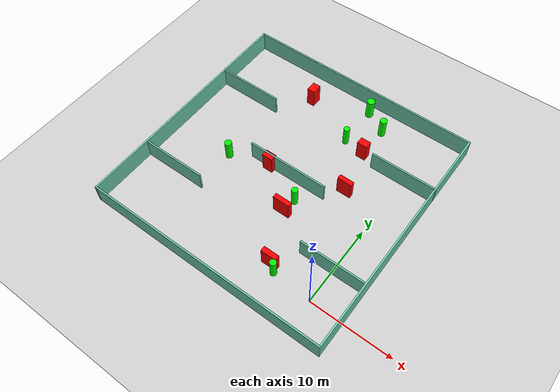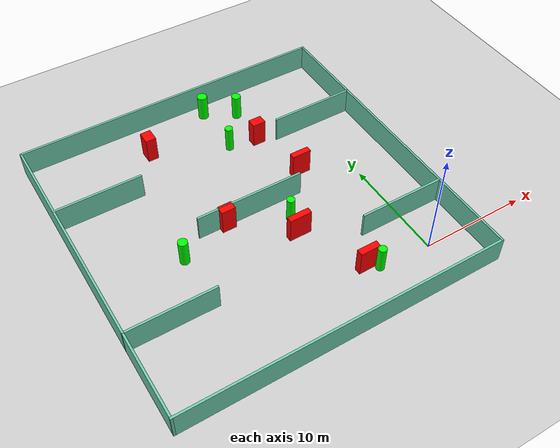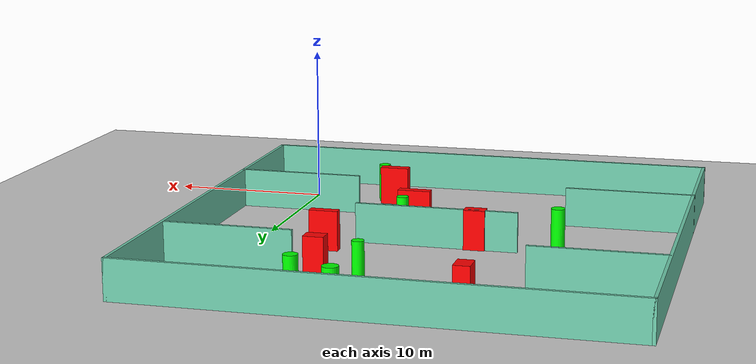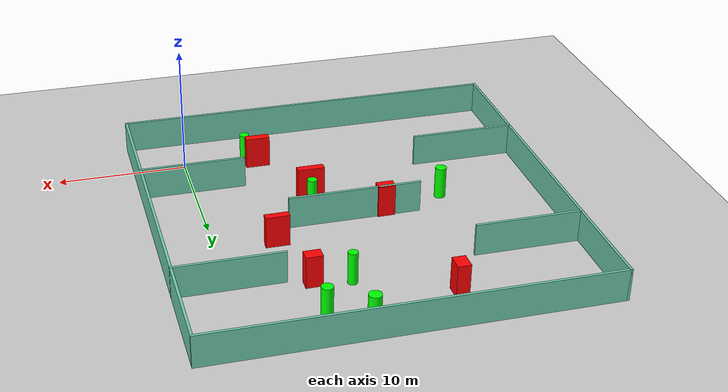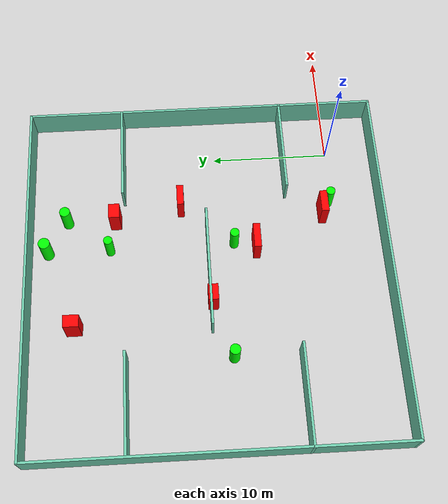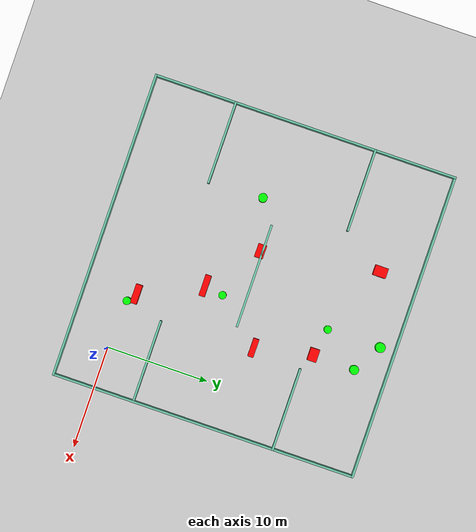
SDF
<sdf version="1.7">
 <world name="default">
  <light name="sun" type="directional">
   <pose>0 0 10 0 -0 0</pose>
   <diffuse>0.8 0.8 0.8 1</diffuse>
   <specular>0.2 0.2 0.2 1</specular>
   <attenuation>
    <range>1000</range>
    <constant>0.9</constant>
    <linear>0.01</linear>
    <quadratic>0.001</quadratic>
   </attenuation>
   <direction>-0.5 0.1 -0.9</direction>
   <spot><inner_angle>0</inner_angle><outer_angle>0</outer_angle><falloff>0</falloff></spot>
  </light>
  <model name="ground_plane">
   <static>1</static>
   <link name="link">
    <collision name="collision">
     <geometry><plane><normal>0 0 1</normal><size>100 100</size></plane></geometry>
     <surface>
      <contact><collide_bitmask>65535</collide_bitmask></contact>
      <friction><ode><mu>100</mu><mu2>50</mu2></ode></friction>
     </surface>
    </collision>
    <visual name="visual">
     <cast_shadows>0</cast_shadows>
     <geometry><plane><normal>0 0 1</normal><size>100 100</size></plane></geometry>
     <material>
      <script><uri>file://media/materials/scripts/gazebo.material</uri><name>Gazebo/Grey</name></script>
     </material>
    </visual>
   </link>
  </model>
  <gravity>0 0 -9.8</gravity>
  <magnetic_field>6e-06 2.3e-05 -4.2e-05</magnetic_field>
  <atmosphere type="adiabatic"/>
  <physics type="ode">
   <max_step_size>0.001</max_step_size>
   <real_time_factor>1</real_time_factor>
   <real_time_update_rate>1000</real_time_update_rate>
  </physics>
  <scene><ambient>0.4 0.4 0.4 1</ambient><background>0.7 0.7 0.7 1</background><shadows>1</shadows></scene>
  <spherical_coordinates>
   <surface_model>EARTH_WGS84</surface_model>
   <latitude_deg>0</latitude_deg>
   <longitude_deg>0</longitude_deg>
   <elevation>0</elevation>
   <heading_deg>0</heading_deg>
  </spherical_coordinates>
  <model name="my_base_walls">
   <link name="Wall_10">
    <collision name="Wall_10_Collision">
     <geometry><box><size>8.2 0.2 2.5</size></box></geometry>
     <pose>0 0 1.25 0 -0 0</pose>
    </collision>
    <visual name="Wall_10_Visual">
     <pose>0 0 1.25 0 -0 0</pose>
     <geometry><box><size>8.2 0.2 2.5</size></box></geometry>
     <material>
      <script><uri>file://media/materials/scripts/gazebo.material</uri><name>Gazebo/Grey</name></script>
      <ambient>0.435294 0.796078 0.67451 1</ambient>
     </material>
     <meta><layer>0</layer></meta>
    </visual>
    <pose>-11 -7 0 0 -0 0</pose>
   </link>
   <link name="Wall_12">
    <collision name="Wall_12_Collision">
     <geometry><box><size>8.2 0.2 2.5</size></box></geometry>
     <pose>0 0 1.25 0 -0 0</pose>
    </collision>
    <visual name="Wall_12_Visual">
     <pose>0 0 1.25 0 -0 0</pose>
     <geometry><box><size>8.2 0.2 2.5</size></box></geometry>
     <material>
      <script><uri>file://media/materials/scripts/gazebo.material</uri><name>Gazebo/Grey</name></script>
      <ambient>0.435294 0.796078 0.67451 1</ambient>
     </material>
     <meta><layer>0</layer></meta>
    </visual>
    <pose>-11 7 0 0 -0 0</pose>
   </link>
   <link name="Wall_14">
    <collision name="Wall_14_Collision">
     <geometry><box><size>8.2 0.2 2.5</size></box></geometry>
     <pose>0 0 1.25 0 -0 0</pose>
    </collision>
    <visual name="Wall_14_Visual">
     <pose>0 0 1.25 0 -0 0</pose>
     <geometry><box><size>8.2 0.2 2.5</size></box></geometry>
     <material>
      <script><uri>file://media/materials/scripts/gazebo.material</uri><name>Gazebo/Grey</name></script>
      <ambient>0.435294 0.796078 0.67451 1</ambient>
     </material>
     <meta><layer>0</layer></meta>
    </visual>
    <pose>11 7 0 0 -0 3.14159</pose>
   </link>
   <link name="Wall_16">
    <collision name="Wall_16_Collision">
     <geometry><box><size>10.2 0.2 2.5</size></box></geometry>
     <pose>0 0 1.25 0 -0 0</pose>
    </collision>
    <visual name="Wall_16_Visual">
     <pose>0 0 1.25 0 -0 0</pose>
     <geometry><box><size>10.2 0.2 2.5</size></box></geometry>
     <material>
      <script><uri>file://media/materials/scripts/gazebo.material</uri><name>Gazebo/Grey</name></script>
      <ambient>0.435294 0.796078 0.67451 1</ambient>
     </material>
     <meta><layer>0</layer></meta>
    </visual>
    <pose>0 0 0 0 -0 3.14159</pose>
   </link>
   <link name="Wall_2">
    <collision name="Wall_2_Collision">
     <geometry><box><size>30.2 0.2 2.5</size></box></geometry>
     <pose>0 0 1.25 0 -0 0</pose>
    </collision>
    <visual name="Wall_2_Visual">
     <pose>0 0 1.25 0 -0 0</pose>
     <geometry><box><size>30.2 0.2 2.5</size></box></geometry>
     <material>
      <script><uri>file://media/materials/scripts/gazebo.material</uri><name>Gazebo/Grey</name></script>
      <ambient>0.435294 0.796078 0.67451 1</ambient>
     </material>
     <meta><layer>0</layer></meta>
    </visual>
    <pose>0 -15 0 0 -0 3.14159</pose>
   </link>
   <link name="Wall_3">
    <collision name="Wall_3_Collision">
     <geometry><box><size>30.2 0.2 2.5</size></box></geometry>
     <pose>0 0 1.25 0 -0 0</pose>
    </collision>
    <visual name="Wall_3_Visual">
     <pose>0 0 1.25 0 -0 0</pose>
     <geometry><box><size>30.2 0.2 2.5</size></box></geometry>
     <material>
      <script><uri>file://media/materials/scripts/gazebo.material</uri><name>Gazebo/Grey</name></script>
      <ambient>0.435294 0.796078 0.67451 1</ambient>
     </material>
     <meta><layer>0</layer></meta>
    </visual>
    <pose>-15 0 0 0 -0 1.5708</pose>
   </link>
   <link name="Wall_4">
    <collision name="Wall_4_Collision">
     <geometry><box><size>30.2 0.2 2.5</size></box></geometry>
     <pose>0 0 1.25 0 -0 0</pose>
    </collision>
    <visual name="Wall_4_Visual">
     <pose>0 0 1.25 0 -0 0</pose>
     <geometry><box><size>30.2 0.2 2.5</size></box></geometry>
     <material>
      <script><uri>file://media/materials/scripts/gazebo.material</uri><name>Gazebo/Grey</name></script>
      <ambient>0.435294 0.796078 0.67451 1</ambient>
     </material>
     <meta><layer>0</layer></meta>
    </visual>
    <pose>0 15 0 0 -0 0</pose>
   </link>
   <link name="Wall_6">
    <collision name="Wall_6_Collision">
     <geometry><box><size>30.2 0.2 2.5</size></box></geometry>
     <pose>0 0 1.25 0 -0 0</pose>
    </collision>
    <visual name="Wall_6_Visual">
     <pose>0 0 1.25 0 -0 0</pose>
     <geometry><box><size>30.2 0.2 2.5</size></box></geometry>
     <material>
      <script><uri>file://media/materials/scripts/gazebo.material</uri><name>Gazebo/Grey</name></script>
      <ambient>0.435294 0.796078 0.67451 1</ambient>
     </material>
     <meta><layer>0</layer></meta>
    </visual>
    <pose>15 0 0 0 -0 1.5708</pose>
   </link>
   <link name="Wall_8">
    <collision name="Wall_8_Collision">
     <geometry><box><size>8.2 0.2 2.5</size></box></geometry>
     <pose>0 0 1.25 0 -0 0</pose>
    </collision>
    <visual name="Wall_8_Visual">
     <pose>0 0 1.25 0 -0 0</pose>
     <geometry><box><size>8.2 0.2 2.5</size></box></geometry>
     <material>
      <script><uri>file://media/materials/scripts/gazebo.material</uri><name>Gazebo/Grey</name></script>
      <ambient>0.435294 0.796078 0.67451 1</ambient>
     </material>
     <meta><layer>0</layer></meta>
    </visual>
    <pose>11 -7 0 0 -0 3.14159</pose>
   </link>
   <static>1</static>
   <pose>-11 11 0 0 -0 0</pose>
  </model>
  <model name="cylinder1">
   <static>1</static>
   <link name="link">
    <inertial>
     <mass>1</mass>
     <inertia><ixx>0.5</ixx><ixy>0</ixy><ixz>0</ixz><iyy>0.5</iyy><iyz>0</iyz><izz>1</izz></inertia>
    </inertial>
    <collision name="collision">
     <geometry><cylinder><radius>0.3737583666034918</radius><length>2.5</length></cylinder></geometry>
    </collision>
    <visual name="visual">
     <geometry><cylinder><radius>0.3737583666034918</radius><length>2.5</length></cylinder></geometry>
     <material>
      <ambient>0 1 0 1</ambient>
      <diffuse>0 1 0 1</diffuse>
      <specular>0.1 0.1 0.1 1</specular>
      <emissive>0 0 0 0</emissive>
     </material>
    </visual>
   </link>
   <pose>-8.295334848968672 8.736734358243865 1.25 0 0 0</pose>
  </model>
  <model name="cylinder2">
   <static>1</static>
   <link name="link">
    <inertial>
     <mass>1</mass>
     <inertia><ixx>0.5</ixx><ixy>0</ixy><ixz>0</ixz><iyy>0.5</iyy><iyz>0</iyz><izz>1</izz></inertia>
    </inertial>
    <collision name="collision">
     <geometry><cylinder><radius>0.36694245312969953</radius><length>2.5</length></cylinder></geometry>
    </collision>
    <visual name="visual">
     <geometry><cylinder><radius>0.36694245312969953</radius><length>2.5</length></cylinder></geometry>
     <material>
      <ambient>0 1 0 1</ambient>
      <diffuse>0 1 0 1</diffuse>
      <specular>0.1 0.1 0.1 1</specular>
      <emissive>0 0 0 0</emissive>
     </material>
    </visual>
   </link>
   <pose>-8.457132224898935 19.256485717257586 1.25 0 0 0</pose>
  </model>
  <model name="cylinder3">
   <static>1</static>
   <link name="link">
    <inertial>
     <mass>1</mass>
     <inertia><ixx>0.5</ixx><ixy>0</ixy><ixz>0</ixz><iyy>0.5</iyy><iyz>0</iyz><izz>1</izz></inertia>
    </inertial>
    <collision name="collision">
     <geometry><cylinder><radius>0.47846008561697473</radius><length>2.5</length></cylinder></geometry>
    </collision>
    <visual name="visual">
     <geometry><cylinder><radius>0.47846008561697473</radius><length>2.5</length></cylinder></geometry>
     <material>
      <ambient>0 1 0 1</ambient>
      <diffuse>0 1 0 1</diffuse>
      <specular>0.1 0.1 0.1 1</specular>
      <emissive>0 0 0 0</emissive>
     </material>
    </visual>
   </link>
   <pose>-8.451727030190035 24.527188340486553 1.25 0 0 0</pose>
  </model>
  <model name="cylinder4">
   <static>1</static>
   <link name="link">
    <inertial>
     <mass>1</mass>
     <inertia><ixx>0.5</ixx><ixy>0</ixy><ixz>0</ixz><iyy>0.5</iyy><iyz>0</iyz><izz>1</izz></inertia>
    </inertial>
    <collision name="collision">
     <geometry><cylinder><radius>0.37633921201885423</radius><length>2.5</length></cylinder></geometry>
    </collision>
    <visual name="visual">
     <geometry><cylinder><radius>0.37633921201885423</radius><length>2.5</length></cylinder></geometry>
     <material>
      <ambient>0 1 0 1</ambient>
      <diffuse>0 1 0 1</diffuse>
      <specular>0.1 0.1 0.1 1</specular>
      <emissive>0 0 0 0</emissive>
     </material>
    </visual>
   </link>
   <pose>-4.849371905049807 0.3279086571770673 1.25 0 0 0</pose>
  </model>
  <model name="cylinder5">
   <static>1</static>
   <link name="link">
    <inertial>
     <mass>1</mass>
     <inertia><ixx>0.5</ixx><ixy>0</ixy><ixz>0</ixz><iyy>0.5</iyy><iyz>0</iyz><izz>1</izz></inertia>
    </inertial>
    <collision name="collision">
     <geometry><cylinder><radius>0.4322325640474097</radius><length>2.5</length></cylinder></geometry>
    </collision>
    <visual name="visual">
     <geometry><cylinder><radius>0.4322325640474097</radius><length>2.5</length></cylinder></geometry>
     <material>
      <ambient>0 1 0 1</ambient>
      <diffuse>0 1 0 1</diffuse>
      <specular>0.1 0.1 0.1 1</specular>
      <emissive>0 0 0 0</emissive>
     </material>
    </visual>
   </link>
   <pose>-18.29075540296794 9.366977200609904 1.25 0 0 0</pose>
  </model>
  <model name="cylinder6">
   <static>1</static>
   <link name="link">
    <inertial>
     <mass>1</mass>
     <inertia><ixx>0.5</ixx><ixy>0</ixy><ixz>0</ixz><iyy>0.5</iyy><iyz>0</iyz><izz>1</izz></inertia>
    </inertial>
    <collision name="collision">
     <geometry><cylinder><radius>0.4360136988487106</radius><length>2.5</length></cylinder></geometry>
    </collision>
    <visual name="visual">
     <geometry><cylinder><radius>0.4360136988487106</radius><length>2.5</length></cylinder></geometry>
     <material>
      <ambient>0 1 0 1</ambient>
      <diffuse>0 1 0 1</diffuse>
      <specular>0.1 0.1 0.1 1</specular>
      <emissive>0 0 0 0</emissive>
     </material>
    </visual>
   </link>
   <pose>-5.6439304320150665 22.87041175932098 1.25 0 0 0</pose>
  </model>
  <model name="box1">
   <static>1</static>
   <link name="link">
    <inertial>
     <mass>1</mass>
     <inertia><ixx>0.083</ixx><ixy>0</ixy><ixz>0</ixz><iyy>0.083</iyy><iyz>0</iyz><izz>0.083</izz></inertia>
    </inertial>
    <collision name="collision">
     <geometry><box><size>1.3307548040492354 0.8373641497364668 2.5</size></box></geometry>
    </collision>
    <visual name="visual">
     <geometry><box><size>1.3307548040492354 0.8373641497364668 2.5</size></box></geometry>
     <material>
      <ambient>1 0 0 1</ambient>
      <diffuse>1 0 0 1</diffuse>
      <specular>0.1 0.1 0.1 1</specular>
      <emissive>0 0 0 0</emissive>
     </material>
    </visual>
    <sensor name="my_contact" type="contact">
     <contact><collision>box_collision</collision><topic>__default_topic__</topic></contact>
    </sensor>
   </link>
   <pose>-13.423475706099484 10.80323645745869 1.25 0 0 0</pose>
  </model>
  <model name="box2">
   <static>1</static>
   <link name="link">
    <inertial>
     <mass>1</mass>
     <inertia><ixx>0.083</ixx><ixy>0</ixy><ixz>0</ixz><iyy>0.083</iyy><iyz>0</iyz><izz>0.083</izz></inertia>
    </inertial>
    <collision name="collision">
     <geometry><box><size>0.9946483726577979 1.2695042360139024 2.5</size></box></geometry>
    </collision>
    <visual name="visual">
     <geometry><box><size>0.9946483726577979 1.2695042360139024 2.5</size></box></geometry>
     <material>
      <ambient>1 0 0 1</ambient>
      <diffuse>1 0 0 1</diffuse>
      <specular>0.1 0.1 0.1 1</specular>
      <emissive>0 0 0 0</emissive>
     </material>
    </visual>
    <sensor name="my_contact" type="contact">
     <contact><collision>box_collision</collision><topic>__default_topic__</topic></contact>
    </sensor>
   </link>
   <pose>-15.281754426751347 22.211037962078596 1.25 0 0 0</pose>
  </model>
  <model name="box3">
   <static>1</static>
   <link name="link">
    <inertial>
     <mass>1</mass>
     <inertia><ixx>0.083</ixx><ixy>0</ixy><ixz>0</ixz><iyy>0.083</iyy><iyz>0</iyz><izz>0.083</izz></inertia>
    </inertial>
    <collision name="collision">
     <geometry><box><size>1.2533507449719994 0.9073077894795051 2.5</size></box></geometry>
    </collision>
    <visual name="visual">
     <geometry><box><size>1.2533507449719994 0.9073077894795051 2.5</size></box></geometry>
     <material>
      <ambient>1 0 0 1</ambient>
      <diffuse>1 0 0 1</diffuse>
      <specular>0.1 0.1 0.1 1</specular>
      <emissive>0 0 0 0</emissive>
     </material>
    </visual>
    <sensor name="my_contact" type="contact">
     <contact><collision>box_collision</collision><topic>__default_topic__</topic></contact>
    </sensor>
   </link>
   <pose>-5.744296589276624 18.747696375935373 1.25 0 0 0</pose>
  </model>
  <model name="box4">
   <static>1</static>
   <link name="link">
    <inertial>
     <mass>1</mass>
     <inertia><ixx>0.083</ixx><ixy>0</ixy><ixz>0</ixz><iyy>0.083</iyy><iyz>0</iyz><izz>0.083</izz></inertia>
    </inertial>
    <collision name="collision">
     <geometry><box><size>1.8880504109128984 0.6294454655608723 2.5</size></box></geometry>
    </collision>
    <visual name="visual">
     <geometry><box><size>1.8880504109128984 0.6294454655608723 2.5</size></box></geometry>
     <material>
      <ambient>1 0 0 1</ambient>
      <diffuse>1 0 0 1</diffuse>
      <specular>0.1 0.1 0.1 1</specular>
      <emissive>0 0 0 0</emissive>
     </material>
    </visual>
    <sensor name="my_contact" type="contact">
     <contact><collision>box_collision</collision><topic>__default_topic__</topic></contact>
    </sensor>
   </link>
   <pose>-5.75097671262446 0.9660964943064991 1.25 0 0 0</pose>
  </model>
  <model name="box5">
   <static>1</static>
   <link name="link">
    <inertial>
     <mass>1</mass>
     <inertia><ixx>0.083</ixx><ixy>0</ixy><ixz>0</ixz><iyy>0.083</iyy><iyz>0</iyz><izz>0.083</izz></inertia>
    </inertial>
    <collision name="collision">
     <geometry><box><size>1.8079412913715744 0.567624221293344 2.5</size></box></geometry>
    </collision>
    <visual name="visual">
     <geometry><box><size>1.8079412913715744 0.567624221293344 2.5</size></box></geometry>
     <material>
      <ambient>1 0 0 1</ambient>
      <diffuse>1 0 0 1</diffuse>
      <specular>0.1 0.1 0.1 1</specular>
      <emissive>0 0 0 0</emissive>
     </material>
    </visual>
    <sensor name="my_contact" type="contact">
     <contact><collision>box_collision</collision><topic>__default_topic__</topic></contact>
    </sensor>
   </link>
   <pose>-4.526060532428133 13.133474835520822 1.25 0 0 0</pose>
  </model>
  <model name="box6">
   <static>1</static>
   <link name="link">
    <inertial>
     <mass>1</mass>
     <inertia><ixx>0.083</ixx><ixy>0</ixy><ixz>0</ixz><iyy>0.083</iyy><iyz>0</iyz><izz>0.083</izz></inertia>
    </inertial>
    <collision name="collision">
     <geometry><box><size>2.0988942888669504 0.5816447823567598 2.5</size></box></geometry>
    </collision>
    <visual name="visual">
     <geometry><box><size>2.0988942888669504 0.5816447823567598 2.5</size></box></geometry>
     <material>
      <ambient>1 0 0 1</ambient>
      <diffuse>1 0 0 1</diffuse>
      <specular>0.1 0.1 0.1 1</specular>
      <emissive>0 0 0 0</emissive>
     </material>
    </visual>
    <sensor name="my_contact" type="contact">
     <contact><collision>box_collision</collision><topic>__default_topic__</topic></contact>
    </sensor>
   </link>
   <pose>-8.620926074382162 6.886780302952049 1.25 0 0 0</pose>
  </model>
 </world>
</sdf>
